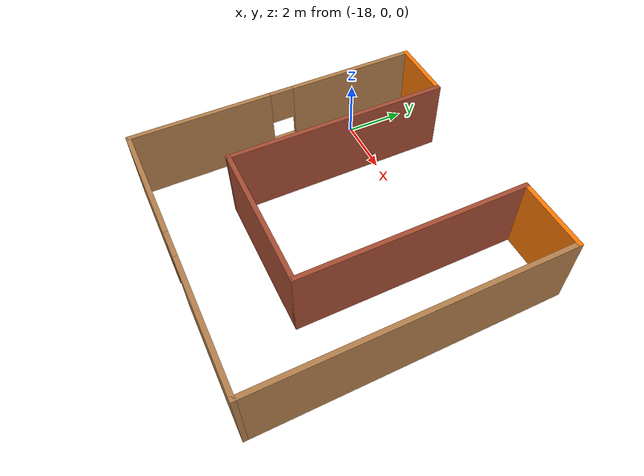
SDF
<?xml version='1.0'?>
<sdf version='1.6'>
  <model name='BUILDING'>
    <pose frame=''>-13.672 -2.63798 0 0 -0 0</pose>
    <link name='Wall_10'>
      <collision name='Wall_10_Collision'>
        <geometry>
          <box>
            <size>5 0.15 2.5</size>
          </box>
        </geometry>
        <pose frame=''>0 0 1.25 0 -0 0</pose>
      </collision>
      <visual name='Wall_10_Visual'>
        <pose frame=''>0 0 1.25 0 -0 0</pose>
        <geometry>
          <box>
            <size>5 0.15 2.5</size>
          </box>
        </geometry>
        <material>
          <script>
            <uri>file://media/materials/scripts/gazebo.material</uri>
            <name>Gazebo/Bricks</name>
          </script>
          <ambient>1 1 1 1</ambient>
        </material>
        <meta>
          <layer>0</layer>
        </meta>
      </visual>
      <pose frame=''>-0.125 -2.42502 0 0 -0 0</pose>
    </link>
    <link name='Wall_12'>
      <collision name='Wall_12_Collision'>
        <geometry>
          <box>
            <size>7.5 0.15 2.5</size>
          </box>
        </geometry>
        <pose frame=''>0 0 1.25 0 -0 0</pose>
      </collision>
      <visual name='Wall_12_Visual'>
        <pose frame=''>0 0 1.25 0 -0 0</pose>
        <geometry>
          <box>
            <size>7.5 0.15 2.5</size>
          </box>
        </geometry>
        <material>
          <script>
            <uri>file://media/materials/scripts/gazebo.material</uri>
            <name>Gazebo/Bricks</name>
          </script>
          <ambient>1 1 1 1</ambient>
        </material>
        <meta>
          <layer>0</layer>
        </meta>
      </visual>
      <pose frame=''>2.3 1.24998 0 0 -0 1.5708</pose>
    </link>
    <link name='Wall_14'>
      <collision name='Wall_14_Collision'>
        <geometry>
          <box>
            <size>2.5 0.15 2.5</size>
          </box>
        </geometry>
        <pose frame=''>0 0 1.25 0 -0 0</pose>
      </collision>
      <visual name='Wall_14_Visual'>
        <pose frame=''>0 0 1.25 0 -0 0</pose>
        <geometry>
          <box>
            <size>2.5 0.15 2.5</size>
          </box>
        </geometry>
        <material>
          <script>
            <uri>file://media/materials/scripts/gazebo.material</uri>
            <name>Gazebo/Grey</name>
          </script>
          <ambient>0.996078 0.47451 0.0196078 1</ambient>
        </material>
        <meta>
          <layer>0</layer>
        </meta>
      </visual>
      <pose frame=''>3.475 4.92498 0 0 -0 0</pose>
    </link>
    <link name='Wall_16'>
      <collision name='Wall_16_Collision'>
        <geometry>
          <box>
            <size>10 0.15 2.5</size>
          </box>
        </geometry>
        <pose frame=''>0 0 1.25 0 -0 0</pose>
      </collision>
      <visual name='Wall_16_Visual'>
        <pose frame=''>0 0 1.25 0 -0 0</pose>
        <geometry>
          <box>
            <size>10 0.15 2.5</size>
          </box>
        </geometry>
        <material>
          <script>
            <uri>file://media/materials/scripts/gazebo.material</uri>
            <name>Gazebo/Wood</name>
          </script>
          <ambient>1 1 1 1</ambient>
        </material>
        <meta>
          <layer>0</layer>
        </meta>
      </visual>
      <pose frame=''>4.65 -2.3e-05 0 0 0 -1.5708</pose>
    </link>
    <link name='Wall_18'>
      <pose frame=''>4.6e-05 -4.92498 0 0 0 -1e-05</pose>
      <visual name='Wall_18_Visual_0'>
        <pose frame=''>-2.66717 0 1.25 0 -0 0</pose>
        <geometry>
          <box>
            <size>4.11557 0.15 2.5</size>
          </box>
        </geometry>
        <material>
          <script>
            <uri>file://media/materials/scripts/gazebo.material</uri>
            <name>Gazebo/Wood</name>
          </script>
          <ambient>1 1 1 1</ambient>
        </material>
        <meta>
          <layer>0</layer>
        </meta>
      </visual>
      <collision name='Wall_18_Collision_0'>
        <geometry>
          <box>
            <size>4.11557 0.15 2.5</size>
          </box>
        </geometry>
        <pose frame=''>-2.66717 0 1.25 0 -0 0</pose>
      </collision>
      <visual name='Wall_18_Visual_1'>
        <pose frame=''>2.50779 0 1.25 0 -0 0</pose>
        <geometry>
          <box>
            <size>4.43434 0.15 2.5</size>
          </box>
        </geometry>
        <material>
          <script>
            <uri>file://media/materials/scripts/gazebo.material</uri>
            <name>Gazebo/Wood</name>
          </script>
          <ambient>1 1 1 1</ambient>
        </material>
        <meta>
          <layer>0</layer>
        </meta>
      </visual>
      <collision name='Wall_18_Collision_1'>
        <geometry>
          <box>
            <size>4.43434 0.15 2.5</size>
          </box>
        </geometry>
        <pose frame=''>2.50779 0 1.25 0 -0 0</pose>
      </collision>
      <visual name='Wall_18_Visual_2'>
        <pose frame=''>-0.159385 0 2.25 0 -0 0</pose>
        <geometry>
          <box>
            <size>0.9 0.15 0.5</size>
          </box>
        </geometry>
        <material>
          <script>
            <uri>file://media/materials/scripts/gazebo.material</uri>
            <name>Gazebo/Wood</name>
          </script>
          <ambient>1 1 1 1</ambient>
        </material>
        <meta>
          <layer>0</layer>
        </meta>
      </visual>
      <collision name='Wall_18_Collision_2'>
        <geometry>
          <box>
            <size>0.9 0.15 0.5</size>
          </box>
        </geometry>
        <pose frame=''>-0.159385 0 2.25 0 -0 0</pose>
      </collision>
    </link>
    <link name='Wall_3'>
      <pose frame=''>-4.64996 2.3e-05 0 0 -0 1.57081</pose>
      <visual name='Wall_3_Visual_0'>
        <pose frame=''>-2.61378 0 1.25 0 -0 0</pose>
        <geometry>
          <box>
            <size>4.77245 0.15 2.5</size>
          </box>
        </geometry>
        <material>
          <script>
            <uri>file://media/materials/scripts/gazebo.material</uri>
            <name>Gazebo/Wood</name>
          </script>
          <ambient>1 1 1 1</ambient>
        </material>
        <meta>
          <layer>0</layer>
        </meta>
      </visual>
      <collision name='Wall_3_Collision_0'>
        <geometry>
          <box>
            <size>4.77245 0.15 2.5</size>
          </box>
        </geometry>
        <pose frame=''>-2.61378 0 1.25 0 -0 0</pose>
      </collision>
      <visual name='Wall_3_Visual_1'>
        <pose frame=''>2.38622 0 0.25 0 -0 0</pose>
        <geometry>
          <box>
            <size>5.22755 0.15 0.5</size>
          </box>
        </geometry>
        <material>
          <script>
            <uri>file://media/materials/scripts/gazebo.material</uri>
            <name>Gazebo/Wood</name>
          </script>
          <ambient>1 1 1 1</ambient>
        </material>
        <meta>
          <layer>0</layer>
        </meta>
      </visual>
      <collision name='Wall_3_Collision_1'>
        <geometry>
          <box>
            <size>5.22755 0.15 0.5</size>
          </box>
        </geometry>
        <pose frame=''>2.38622 0 0.25 0 -0 0</pose>
      </collision>
      <visual name='Wall_3_Visual_2'>
        <pose frame=''>2.78622 0 1.5 0 -0 0</pose>
        <geometry>
          <box>
            <size>4.42755 0.15 2</size>
          </box>
        </geometry>
        <material>
          <script>
            <uri>file://media/materials/scripts/gazebo.material</uri>
            <name>Gazebo/Wood</name>
          </script>
          <ambient>1 1 1 1</ambient>
        </material>
        <meta>
          <layer>0</layer>
        </meta>
      </visual>
      <collision name='Wall_3_Collision_2'>
        <geometry>
          <box>
            <size>4.42755 0.15 2</size>
          </box>
        </geometry>
        <pose frame=''>2.78622 0 1.5 0 -0 0</pose>
      </collision>
      <visual name='Wall_3_Visual_3'>
        <pose frame=''>0.172447 0 1.9 0 -0 0</pose>
        <geometry>
          <box>
            <size>0.8 0.15 1.2</size>
          </box>
        </geometry>
        <material>
          <script>
            <uri>file://media/materials/scripts/gazebo.material</uri>
            <name>Gazebo/Wood</name>
          </script>
          <ambient>1 1 1 1</ambient>
        </material>
        <meta>
          <layer>0</layer>
        </meta>
      </visual>
      <collision name='Wall_3_Collision_3'>
        <geometry>
          <box>
            <size>0.8 0.15 1.2</size>
          </box>
        </geometry>
        <pose frame=''>0.172447 0 1.9 0 -0 0</pose>
      </collision>
    </link>
    <link name='Wall_6'>
      <collision name='Wall_6_Collision'>
        <geometry>
          <box>
            <size>2.25 0.15 2.5</size>
          </box>
        </geometry>
        <pose frame=''>0 0 1.25 0 -0 0</pose>
      </collision>
      <visual name='Wall_6_Visual'>
        <pose frame=''>0 0 1.25 0 -0 0</pose>
        <geometry>
          <box>
            <size>2.25 0.15 2.5</size>
          </box>
        </geometry>
        <material>
          <script>
            <uri>file://media/materials/scripts/gazebo.material</uri>
            <name>Gazebo/Grey</name>
          </script>
          <ambient>0.996078 0.47451 0.0196078 1</ambient>
        </material>
        <meta>
          <layer>0</layer>
        </meta>
      </visual>
      <pose frame=''>-3.6 4.92498 0 0 -0 0</pose>
    </link>
    <link name='Wall_8'>
      <collision name='Wall_8_Collision'>
        <geometry>
          <box>
            <size>7.5 0.15 2.5</size>
          </box>
        </geometry>
        <pose frame=''>0 0 1.25 0 -0 0</pose>
      </collision>
      <visual name='Wall_8_Visual'>
        <pose frame=''>0 0 1.25 0 -0 0</pose>
        <geometry>
          <box>
            <size>7.5 0.15 2.5</size>
          </box>
        </geometry>
        <material>
          <script>
            <uri>file://media/materials/scripts/gazebo.material</uri>
            <name>Gazebo/Bricks</name>
          </script>
          <ambient>1 1 1 1</ambient>
        </material>
        <meta>
          <layer>0</layer>
        </meta>
      </visual>
      <pose frame=''>-2.55 1.24998 0 0 0 -1.5708</pose>
    </link>
    <static>1</static>
  </model>
</sdf>
